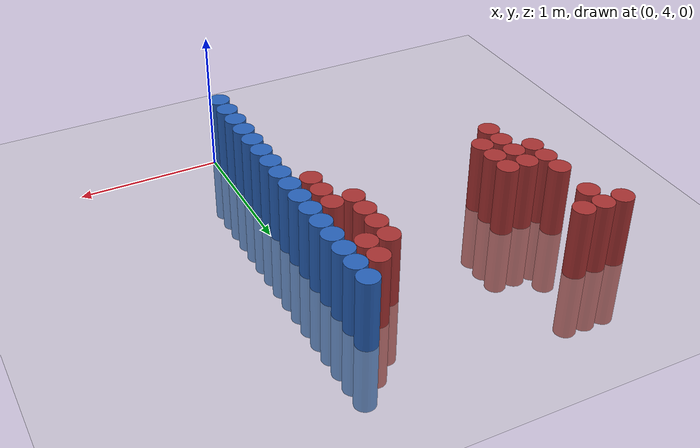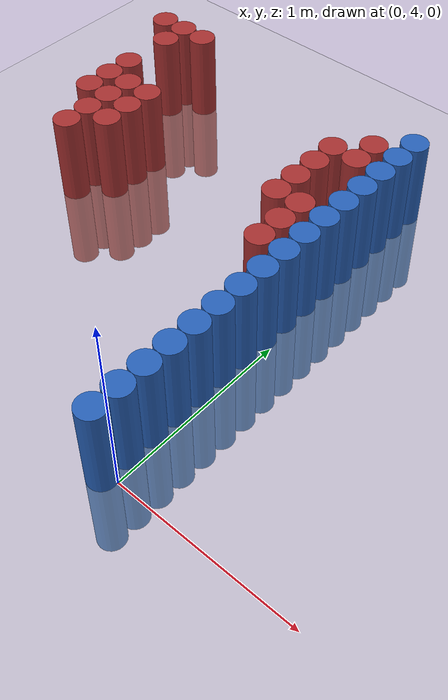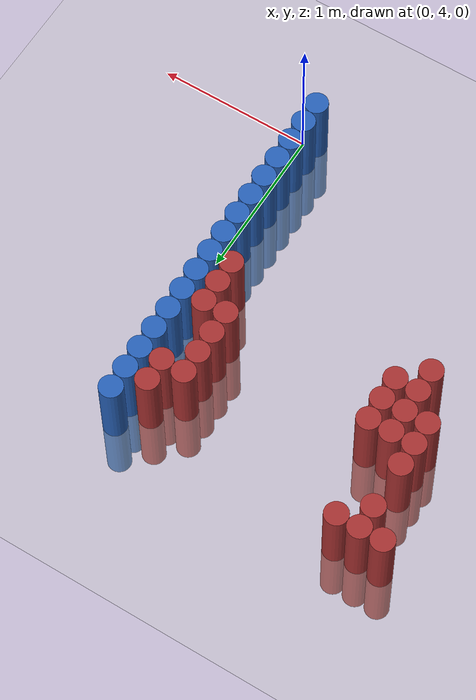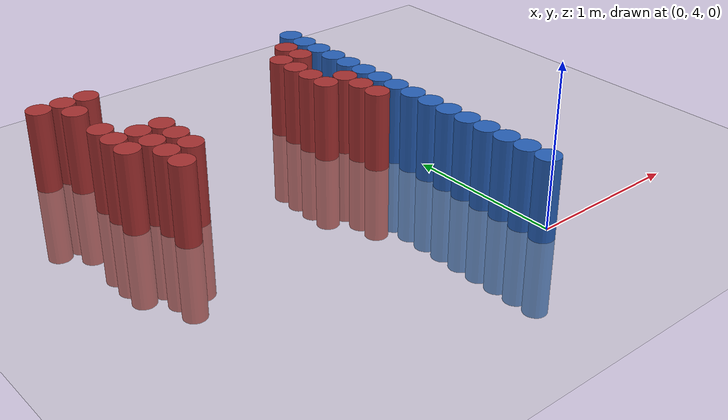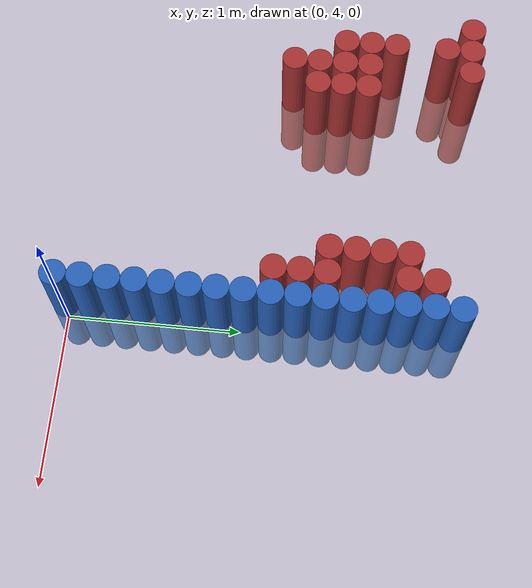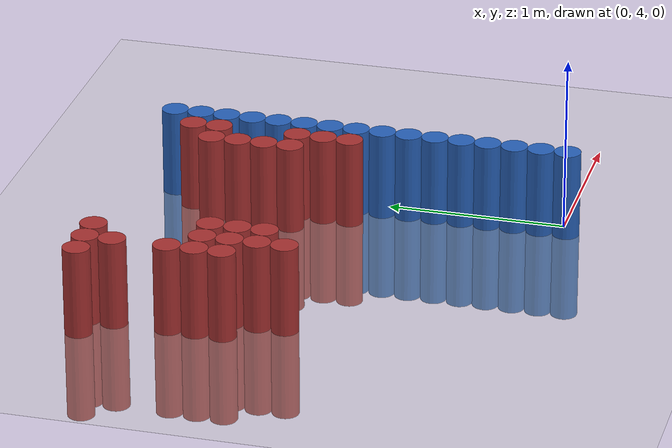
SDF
<sdf version="1.6">
 <world name="default">
  <model name="ground_plane">
   <static>1</static>
   <link name="link">
    <collision name="collision">
     <geometry><plane><normal>0 0 1</normal><size>100 100</size></plane></geometry>
     <surface><friction><ode><mu>100</mu><mu2>50</mu2></ode></friction></surface>
    </collision>
    <visual name="visual">
     <cast_shadows>0</cast_shadows>
     <geometry><plane><normal>0 0 1</normal><size>100 100</size></plane></geometry>
     <material>
      <script><uri>file://media/materials/scripts/gazebo.material</uri><name>Gazebo/Grey</name></script>
     </material>
    </visual>
   </link>
  </model>
  <model name="unit_cylinder_80">
   <static>1</static>
   <pose>-0.075000 3.975000 0.000000 0.000000 0.000000 0.000000</pose>
   <link name="link">
    <inertial>
     <mass>1</mass>
     <inertia><ixx>0.145833</ixx><ixy>0</ixy><ixz>0</ixz><iyy>0.145833</iyy><iyz>0</iyz><izz>0.125</izz></inertia>
    </inertial>
    <collision name="collision">
     <geometry><cylinder><radius>0.075000</radius><length>1</length></cylinder></geometry>
    </collision>
    <visual name="visual">
     <geometry><cylinder><radius>0.075000</radius><length>1</length></cylinder></geometry>
     <material>
      <ambient>0.152000 0.379000 0.720000 1</ambient>
      <diffuse>0.152000 0.379000 0.720000 1</diffuse>
     </material>
     <material>
      <script><name>Gazebo/Grey</name><uri>file://media/materials/scripts/gazebo.material</uri></script>
     </material>
    </visual>
    <sensor name="sensor_contact" type="contact"><contact><collision>collision</collision></contact></sensor>
   </link>
   <plugin filename="gz-sim-touchplugin-system" name="gz::sim::systems::TouchPlugin">
    <target>robot</target>
    <namespace>robot</namespace>
    <time>0.001</time>
    <enabled>true</enabled>
   </plugin>
  </model>
  <model name="unit_cylinder_82">
   <static>1</static>
   <pose>-0.075000 4.125000 0.000000 0.000000 0.000000 0.000000</pose>
   <link name="link">
    <inertial>
     <mass>1</mass>
     <inertia><ixx>0.145833</ixx><ixy>0</ixy><ixz>0</ixz><iyy>0.145833</iyy><iyz>0</iyz><izz>0.125</izz></inertia>
    </inertial>
    <collision name="collision">
     <geometry><cylinder><radius>0.075000</radius><length>1</length></cylinder></geometry>
    </collision>
    <visual name="visual">
     <geometry><cylinder><radius>0.075000</radius><length>1</length></cylinder></geometry>
     <material>
      <ambient>0.152000 0.379000 0.720000 1</ambient>
      <diffuse>0.152000 0.379000 0.720000 1</diffuse>
     </material>
     <material>
      <script><name>Gazebo/Grey</name><uri>file://media/materials/scripts/gazebo.material</uri></script>
     </material>
    </visual>
    <sensor name="sensor_contact" type="contact"><contact><collision>collision</collision></contact></sensor>
   </link>
   <plugin filename="gz-sim-touchplugin-system" name="gz::sim::systems::TouchPlugin">
    <target>robot</target>
    <namespace>robot</namespace>
    <time>0.001</time>
    <enabled>true</enabled>
   </plugin>
  </model>
  <model name="unit_cylinder_84">
   <static>1</static>
   <pose>-0.075000 4.275000 0.000000 0.000000 0.000000 0.000000</pose>
   <link name="link">
    <inertial>
     <mass>1</mass>
     <inertia><ixx>0.145833</ixx><ixy>0</ixy><ixz>0</ixz><iyy>0.145833</iyy><iyz>0</iyz><izz>0.125</izz></inertia>
    </inertial>
    <collision name="collision">
     <geometry><cylinder><radius>0.075000</radius><length>1</length></cylinder></geometry>
    </collision>
    <visual name="visual">
     <geometry><cylinder><radius>0.075000</radius><length>1</length></cylinder></geometry>
     <material>
      <ambient>0.152000 0.379000 0.720000 1</ambient>
      <diffuse>0.152000 0.379000 0.720000 1</diffuse>
     </material>
     <material>
      <script><name>Gazebo/Grey</name><uri>file://media/materials/scripts/gazebo.material</uri></script>
     </material>
    </visual>
    <sensor name="sensor_contact" type="contact"><contact><collision>collision</collision></contact></sensor>
   </link>
   <plugin filename="gz-sim-touchplugin-system" name="gz::sim::systems::TouchPlugin">
    <target>robot</target>
    <namespace>robot</namespace>
    <time>0.001</time>
    <enabled>true</enabled>
   </plugin>
  </model>
  <model name="unit_cylinder_86">
   <static>1</static>
   <pose>-0.075000 4.425000 0.000000 0.000000 0.000000 0.000000</pose>
   <link name="link">
    <inertial>
     <mass>1</mass>
     <inertia><ixx>0.145833</ixx><ixy>0</ixy><ixz>0</ixz><iyy>0.145833</iyy><iyz>0</iyz><izz>0.125</izz></inertia>
    </inertial>
    <collision name="collision">
     <geometry><cylinder><radius>0.075000</radius><length>1</length></cylinder></geometry>
    </collision>
    <visual name="visual">
     <geometry><cylinder><radius>0.075000</radius><length>1</length></cylinder></geometry>
     <material>
      <ambient>0.152000 0.379000 0.720000 1</ambient>
      <diffuse>0.152000 0.379000 0.720000 1</diffuse>
     </material>
     <material>
      <script><name>Gazebo/Grey</name><uri>file://media/materials/scripts/gazebo.material</uri></script>
     </material>
    </visual>
    <sensor name="sensor_contact" type="contact"><contact><collision>collision</collision></contact></sensor>
   </link>
   <plugin filename="gz-sim-touchplugin-system" name="gz::sim::systems::TouchPlugin">
    <target>robot</target>
    <namespace>robot</namespace>
    <time>0.001</time>
    <enabled>true</enabled>
   </plugin>
  </model>
  <model name="unit_cylinder_88">
   <static>1</static>
   <pose>-0.075000 4.575000 0.000000 0.000000 0.000000 0.000000</pose>
   <link name="link">
    <inertial>
     <mass>1</mass>
     <inertia><ixx>0.145833</ixx><ixy>0</ixy><ixz>0</ixz><iyy>0.145833</iyy><iyz>0</iyz><izz>0.125</izz></inertia>
    </inertial>
    <collision name="collision">
     <geometry><cylinder><radius>0.075000</radius><length>1</length></cylinder></geometry>
    </collision>
    <visual name="visual">
     <geometry><cylinder><radius>0.075000</radius><length>1</length></cylinder></geometry>
     <material>
      <ambient>0.152000 0.379000 0.720000 1</ambient>
      <diffuse>0.152000 0.379000 0.720000 1</diffuse>
     </material>
     <material>
      <script><name>Gazebo/Grey</name><uri>file://media/materials/scripts/gazebo.material</uri></script>
     </material>
    </visual>
    <sensor name="sensor_contact" type="contact"><contact><collision>collision</collision></contact></sensor>
   </link>
   <plugin filename="gz-sim-touchplugin-system" name="gz::sim::systems::TouchPlugin">
    <target>robot</target>
    <namespace>robot</namespace>
    <time>0.001</time>
    <enabled>true</enabled>
   </plugin>
  </model>
  <model name="unit_cylinder_90">
   <static>1</static>
   <pose>-0.075000 4.725000 0.000000 0.000000 0.000000 0.000000</pose>
   <link name="link">
    <inertial>
     <mass>1</mass>
     <inertia><ixx>0.145833</ixx><ixy>0</ixy><ixz>0</ixz><iyy>0.145833</iyy><iyz>0</iyz><izz>0.125</izz></inertia>
    </inertial>
    <collision name="collision">
     <geometry><cylinder><radius>0.075000</radius><length>1</length></cylinder></geometry>
    </collision>
    <visual name="visual">
     <geometry><cylinder><radius>0.075000</radius><length>1</length></cylinder></geometry>
     <material>
      <ambient>0.152000 0.379000 0.720000 1</ambient>
      <diffuse>0.152000 0.379000 0.720000 1</diffuse>
     </material>
     <material>
      <script><name>Gazebo/Grey</name><uri>file://media/materials/scripts/gazebo.material</uri></script>
     </material>
    </visual>
    <sensor name="sensor_contact" type="contact"><contact><collision>collision</collision></contact></sensor>
   </link>
   <plugin filename="gz-sim-touchplugin-system" name="gz::sim::systems::TouchPlugin">
    <target>robot</target>
    <namespace>robot</namespace>
    <time>0.001</time>
    <enabled>true</enabled>
   </plugin>
  </model>
  <model name="unit_cylinder_92">
   <static>1</static>
   <pose>-0.075000 4.875000 0.000000 0.000000 0.000000 0.000000</pose>
   <link name="link">
    <inertial>
     <mass>1</mass>
     <inertia><ixx>0.145833</ixx><ixy>0</ixy><ixz>0</ixz><iyy>0.145833</iyy><iyz>0</iyz><izz>0.125</izz></inertia>
    </inertial>
    <collision name="collision">
     <geometry><cylinder><radius>0.075000</radius><length>1</length></cylinder></geometry>
    </collision>
    <visual name="visual">
     <geometry><cylinder><radius>0.075000</radius><length>1</length></cylinder></geometry>
     <material>
      <ambient>0.152000 0.379000 0.720000 1</ambient>
      <diffuse>0.152000 0.379000 0.720000 1</diffuse>
     </material>
     <material>
      <script><name>Gazebo/Grey</name><uri>file://media/materials/scripts/gazebo.material</uri></script>
     </material>
    </visual>
    <sensor name="sensor_contact" type="contact"><contact><collision>collision</collision></contact></sensor>
   </link>
   <plugin filename="gz-sim-touchplugin-system" name="gz::sim::systems::TouchPlugin">
    <target>robot</target>
    <namespace>robot</namespace>
    <time>0.001</time>
    <enabled>true</enabled>
   </plugin>
  </model>
  <model name="unit_cylinder_94">
   <static>1</static>
   <pose>-0.075000 5.025000 0.000000 0.000000 0.000000 0.000000</pose>
   <link name="link">
    <inertial>
     <mass>1</mass>
     <inertia><ixx>0.145833</ixx><ixy>0</ixy><ixz>0</ixz><iyy>0.145833</iyy><iyz>0</iyz><izz>0.125</izz></inertia>
    </inertial>
    <collision name="collision">
     <geometry><cylinder><radius>0.075000</radius><length>1</length></cylinder></geometry>
    </collision>
    <visual name="visual">
     <geometry><cylinder><radius>0.075000</radius><length>1</length></cylinder></geometry>
     <material>
      <ambient>0.152000 0.379000 0.720000 1</ambient>
      <diffuse>0.152000 0.379000 0.720000 1</diffuse>
     </material>
     <material>
      <script><name>Gazebo/Grey</name><uri>file://media/materials/scripts/gazebo.material</uri></script>
     </material>
    </visual>
    <sensor name="sensor_contact" type="contact"><contact><collision>collision</collision></contact></sensor>
   </link>
   <plugin filename="gz-sim-touchplugin-system" name="gz::sim::systems::TouchPlugin">
    <target>robot</target>
    <namespace>robot</namespace>
    <time>0.001</time>
    <enabled>true</enabled>
   </plugin>
  </model>
  <model name="unit_cylinder_227">
   <static>1</static>
   <pose>-1.875000 6.225000 0.000000 0.000000 0.000000 0.000000</pose>
   <link name="link">
    <inertial>
     <mass>1</mass>
     <inertia><ixx>0.145833</ixx><ixy>0</ixy><ixz>0</ixz><iyy>0.145833</iyy><iyz>0</iyz><izz>0.125</izz></inertia>
    </inertial>
    <collision name="collision">
     <geometry><cylinder><radius>0.075000</radius><length>1</length></cylinder></geometry>
    </collision>
    <visual name="visual">
     <geometry><cylinder><radius>0.075000</radius><length>1</length></cylinder></geometry>
     <material>
      <ambient>0.648000 0.192000 0.192000 1</ambient>
      <diffuse>0.648000 0.192000 0.192000 1</diffuse>
     </material>
     <material>
      <script><name>Gazebo/Grey</name><uri>file://media/materials/scripts/gazebo.material</uri></script>
     </material>
    </visual>
    <sensor name="sensor_contact" type="contact"><contact><collision>collision</collision></contact></sensor>
   </link>
   <plugin filename="gz-sim-touchplugin-system" name="gz::sim::systems::TouchPlugin">
    <target>robot</target>
    <namespace>robot</namespace>
    <time>0.001</time>
    <enabled>true</enabled>
   </plugin>
  </model>
  <model name="unit_cylinder_233">
   <static>1</static>
   <pose>-1.725000 5.475000 0.000000 0.000000 0.000000 0.000000</pose>
   <link name="link">
    <inertial>
     <mass>1</mass>
     <inertia><ixx>0.145833</ixx><ixy>0</ixy><ixz>0</ixz><iyy>0.145833</iyy><iyz>0</iyz><izz>0.125</izz></inertia>
    </inertial>
    <collision name="collision">
     <geometry><cylinder><radius>0.075000</radius><length>1</length></cylinder></geometry>
    </collision>
    <visual name="visual">
     <geometry><cylinder><radius>0.075000</radius><length>1</length></cylinder></geometry>
     <material>
      <ambient>0.648000 0.192000 0.192000 1</ambient>
      <diffuse>0.648000 0.192000 0.192000 1</diffuse>
     </material>
     <material>
      <script><name>Gazebo/Grey</name><uri>file://media/materials/scripts/gazebo.material</uri></script>
     </material>
    </visual>
    <sensor name="sensor_contact" type="contact"><contact><collision>collision</collision></contact></sensor>
   </link>
   <plugin filename="gz-sim-touchplugin-system" name="gz::sim::systems::TouchPlugin">
    <target>robot</target>
    <namespace>robot</namespace>
    <time>0.001</time>
    <enabled>true</enabled>
   </plugin>
  </model>
  <model name="unit_cylinder_234">
   <static>1</static>
   <pose>-1.725000 5.625000 0.000000 0.000000 0.000000 0.000000</pose>
   <link name="link">
    <inertial>
     <mass>1</mass>
     <inertia><ixx>0.145833</ixx><ixy>0</ixy><ixz>0</ixz><iyy>0.145833</iyy><iyz>0</iyz><izz>0.125</izz></inertia>
    </inertial>
    <collision name="collision">
     <geometry><cylinder><radius>0.075000</radius><length>1</length></cylinder></geometry>
    </collision>
    <visual name="visual">
     <geometry><cylinder><radius>0.075000</radius><length>1</length></cylinder></geometry>
     <material>
      <ambient>0.648000 0.192000 0.192000 1</ambient>
      <diffuse>0.648000 0.192000 0.192000 1</diffuse>
     </material>
     <material>
      <script><name>Gazebo/Grey</name><uri>file://media/materials/scripts/gazebo.material</uri></script>
     </material>
    </visual>
    <sensor name="sensor_contact" type="contact"><contact><collision>collision</collision></contact></sensor>
   </link>
   <plugin filename="gz-sim-touchplugin-system" name="gz::sim::systems::TouchPlugin">
    <target>robot</target>
    <namespace>robot</namespace>
    <time>0.001</time>
    <enabled>true</enabled>
   </plugin>
  </model>
  <model name="unit_cylinder_235">
   <static>1</static>
   <pose>-1.725000 5.775000 0.000000 0.000000 0.000000 0.000000</pose>
   <link name="link">
    <inertial>
     <mass>1</mass>
     <inertia><ixx>0.145833</ixx><ixy>0</ixy><ixz>0</ixz><iyy>0.145833</iyy><iyz>0</iyz><izz>0.125</izz></inertia>
    </inertial>
    <collision name="collision">
     <geometry><cylinder><radius>0.075000</radius><length>1</length></cylinder></geometry>
    </collision>
    <visual name="visual">
     <geometry><cylinder><radius>0.075000</radius><length>1</length></cylinder></geometry>
     <material>
      <ambient>0.648000 0.192000 0.192000 1</ambient>
      <diffuse>0.648000 0.192000 0.192000 1</diffuse>
     </material>
     <material>
      <script><name>Gazebo/Grey</name><uri>file://media/materials/scripts/gazebo.material</uri></script>
     </material>
    </visual>
    <sensor name="sensor_contact" type="contact"><contact><collision>collision</collision></contact></sensor>
   </link>
   <plugin filename="gz-sim-touchplugin-system" name="gz::sim::systems::TouchPlugin">
    <target>robot</target>
    <namespace>robot</namespace>
    <time>0.001</time>
    <enabled>true</enabled>
   </plugin>
  </model>
  <model name="unit_cylinder_236">
   <static>1</static>
   <pose>-1.725000 6.075000 0.000000 0.000000 0.000000 0.000000</pose>
   <link name="link">
    <inertial>
     <mass>1</mass>
     <inertia><ixx>0.145833</ixx><ixy>0</ixy><ixz>0</ixz><iyy>0.145833</iyy><iyz>0</iyz><izz>0.125</izz></inertia>
    </inertial>
    <collision name="collision">
     <geometry><cylinder><radius>0.075000</radius><length>1</length></cylinder></geometry>
    </collision>
    <visual name="visual">
     <geometry><cylinder><radius>0.075000</radius><length>1</length></cylinder></geometry>
     <material>
      <ambient>0.648000 0.192000 0.192000 1</ambient>
      <diffuse>0.648000 0.192000 0.192000 1</diffuse>
     </material>
     <material>
      <script><name>Gazebo/Grey</name><uri>file://media/materials/scripts/gazebo.material</uri></script>
     </material>
    </visual>
    <sensor name="sensor_contact" type="contact"><contact><collision>collision</collision></contact></sensor>
   </link>
   <plugin filename="gz-sim-touchplugin-system" name="gz::sim::systems::TouchPlugin">
    <target>robot</target>
    <namespace>robot</namespace>
    <time>0.001</time>
    <enabled>true</enabled>
   </plugin>
  </model>
  <model name="unit_cylinder_237">
   <static>1</static>
   <pose>-1.725000 6.225000 0.000000 0.000000 0.000000 0.000000</pose>
   <link name="link">
    <inertial>
     <mass>1</mass>
     <inertia><ixx>0.145833</ixx><ixy>0</ixy><ixz>0</ixz><iyy>0.145833</iyy><iyz>0</iyz><izz>0.125</izz></inertia>
    </inertial>
    <collision name="collision">
     <geometry><cylinder><radius>0.075000</radius><length>1</length></cylinder></geometry>
    </collision>
    <visual name="visual">
     <geometry><cylinder><radius>0.075000</radius><length>1</length></cylinder></geometry>
     <material>
      <ambient>0.648000 0.192000 0.192000 1</ambient>
      <diffuse>0.648000 0.192000 0.192000 1</diffuse>
     </material>
     <material>
      <script><name>Gazebo/Grey</name><uri>file://media/materials/scripts/gazebo.material</uri></script>
     </material>
    </visual>
    <sensor name="sensor_contact" type="contact"><contact><collision>collision</collision></contact></sensor>
   </link>
   <plugin filename="gz-sim-touchplugin-system" name="gz::sim::systems::TouchPlugin">
    <target>robot</target>
    <namespace>robot</namespace>
    <time>0.001</time>
    <enabled>true</enabled>
   </plugin>
  </model>
  <model name="unit_cylinder_242">
   <static>1</static>
   <pose>-1.575000 5.175000 0.000000 0.000000 0.000000 0.000000</pose>
   <link name="link">
    <inertial>
     <mass>1</mass>
     <inertia><ixx>0.145833</ixx><ixy>0</ixy><ixz>0</ixz><iyy>0.145833</iyy><iyz>0</iyz><izz>0.125</izz></inertia>
    </inertial>
    <collision name="collision">
     <geometry><cylinder><radius>0.075000</radius><length>1</length></cylinder></geometry>
    </collision>
    <visual name="visual">
     <geometry><cylinder><radius>0.075000</radius><length>1</length></cylinder></geometry>
     <material>
      <ambient>0.648000 0.192000 0.192000 1</ambient>
      <diffuse>0.648000 0.192000 0.192000 1</diffuse>
     </material>
     <material>
      <script><name>Gazebo/Grey</name><uri>file://media/materials/scripts/gazebo.material</uri></script>
     </material>
    </visual>
    <sensor name="sensor_contact" type="contact"><contact><collision>collision</collision></contact></sensor>
   </link>
   <plugin filename="gz-sim-touchplugin-system" name="gz::sim::systems::TouchPlugin">
    <target>robot</target>
    <namespace>robot</namespace>
    <time>0.001</time>
    <enabled>true</enabled>
   </plugin>
  </model>
  <model name="unit_cylinder_243">
   <static>1</static>
   <pose>-1.575000 5.325000 0.000000 0.000000 0.000000 0.000000</pose>
   <link name="link">
    <inertial>
     <mass>1</mass>
     <inertia><ixx>0.145833</ixx><ixy>0</ixy><ixz>0</ixz><iyy>0.145833</iyy><iyz>0</iyz><izz>0.125</izz></inertia>
    </inertial>
    <collision name="collision">
     <geometry><cylinder><radius>0.075000</radius><length>1</length></cylinder></geometry>
    </collision>
    <visual name="visual">
     <geometry><cylinder><radius>0.075000</radius><length>1</length></cylinder></geometry>
     <material>
      <ambient>0.648000 0.192000 0.192000 1</ambient>
      <diffuse>0.648000 0.192000 0.192000 1</diffuse>
     </material>
     <material>
      <script><name>Gazebo/Grey</name><uri>file://media/materials/scripts/gazebo.material</uri></script>
     </material>
    </visual>
    <sensor name="sensor_contact" type="contact"><contact><collision>collision</collision></contact></sensor>
   </link>
   <plugin filename="gz-sim-touchplugin-system" name="gz::sim::systems::TouchPlugin">
    <target>robot</target>
    <namespace>robot</namespace>
    <time>0.001</time>
    <enabled>true</enabled>
   </plugin>
  </model>
  <model name="unit_cylinder_244">
   <static>1</static>
   <pose>-1.575000 5.475000 0.000000 0.000000 0.000000 0.000000</pose>
   <link name="link">
    <inertial>
     <mass>1</mass>
     <inertia><ixx>0.145833</ixx><ixy>0</ixy><ixz>0</ixz><iyy>0.145833</iyy><iyz>0</iyz><izz>0.125</izz></inertia>
    </inertial>
    <collision name="collision">
     <geometry><cylinder><radius>0.075000</radius><length>1</length></cylinder></geometry>
    </collision>
    <visual name="visual">
     <geometry><cylinder><radius>0.075000</radius><length>1</length></cylinder></geometry>
     <material>
      <ambient>0.648000 0.192000 0.192000 1</ambient>
      <diffuse>0.648000 0.192000 0.192000 1</diffuse>
     </material>
     <material>
      <script><name>Gazebo/Grey</name><uri>file://media/materials/scripts/gazebo.material</uri></script>
     </material>
    </visual>
    <sensor name="sensor_contact" type="contact"><contact><collision>collision</collision></contact></sensor>
   </link>
   <plugin filename="gz-sim-touchplugin-system" name="gz::sim::systems::TouchPlugin">
    <target>robot</target>
    <namespace>robot</namespace>
    <time>0.001</time>
    <enabled>true</enabled>
   </plugin>
  </model>
  <model name="unit_cylinder_245">
   <static>1</static>
   <pose>-1.575000 5.625000 0.000000 0.000000 0.000000 0.000000</pose>
   <link name="link">
    <inertial>
     <mass>1</mass>
     <inertia><ixx>0.145833</ixx><ixy>0</ixy><ixz>0</ixz><iyy>0.145833</iyy><iyz>0</iyz><izz>0.125</izz></inertia>
    </inertial>
    <collision name="collision">
     <geometry><cylinder><radius>0.075000</radius><length>1</length></cylinder></geometry>
    </collision>
    <visual name="visual">
     <geometry><cylinder><radius>0.075000</radius><length>1</length></cylinder></geometry>
     <material>
      <ambient>0.648000 0.192000 0.192000 1</ambient>
      <diffuse>0.648000 0.192000 0.192000 1</diffuse>
     </material>
     <material>
      <script><name>Gazebo/Grey</name><uri>file://media/materials/scripts/gazebo.material</uri></script>
     </material>
    </visual>
    <sensor name="sensor_contact" type="contact"><contact><collision>collision</collision></contact></sensor>
   </link>
   <plugin filename="gz-sim-touchplugin-system" name="gz::sim::systems::TouchPlugin">
    <target>robot</target>
    <namespace>robot</namespace>
    <time>0.001</time>
    <enabled>true</enabled>
   </plugin>
  </model>
  <model name="unit_cylinder_246">
   <static>1</static>
   <pose>-1.575000 6.225000 0.000000 0.000000 0.000000 0.000000</pose>
   <link name="link">
    <inertial>
     <mass>1</mass>
     <inertia><ixx>0.145833</ixx><ixy>0</ixy><ixz>0</ixz><iyy>0.145833</iyy><iyz>0</iyz><izz>0.125</izz></inertia>
    </inertial>
    <collision name="collision">
     <geometry><cylinder><radius>0.075000</radius><length>1</length></cylinder></geometry>
    </collision>
    <visual name="visual">
     <geometry><cylinder><radius>0.075000</radius><length>1</length></cylinder></geometry>
     <material>
      <ambient>0.648000 0.192000 0.192000 1</ambient>
      <diffuse>0.648000 0.192000 0.192000 1</diffuse>
     </material>
     <material>
      <script><name>Gazebo/Grey</name><uri>file://media/materials/scripts/gazebo.material</uri></script>
     </material>
    </visual>
    <sensor name="sensor_contact" type="contact"><contact><collision>collision</collision></contact></sensor>
   </link>
   <plugin filename="gz-sim-touchplugin-system" name="gz::sim::systems::TouchPlugin">
    <target>robot</target>
    <namespace>robot</namespace>
    <time>0.001</time>
    <enabled>true</enabled>
   </plugin>
  </model>
  <model name="unit_cylinder_256">
   <static>1</static>
   <pose>-1.425000 5.325000 0.000000 0.000000 0.000000 0.000000</pose>
   <link name="link">
    <inertial>
     <mass>1</mass>
     <inertia><ixx>0.145833</ixx><ixy>0</ixy><ixz>0</ixz><iyy>0.145833</iyy><iyz>0</iyz><izz>0.125</izz></inertia>
    </inertial>
    <collision name="collision">
     <geometry><cylinder><radius>0.075000</radius><length>1</length></cylinder></geometry>
    </collision>
    <visual name="visual">
     <geometry><cylinder><radius>0.075000</radius><length>1</length></cylinder></geometry>
     <material>
      <ambient>0.648000 0.192000 0.192000 1</ambient>
      <diffuse>0.648000 0.192000 0.192000 1</diffuse>
     </material>
     <material>
      <script><name>Gazebo/Grey</name><uri>file://media/materials/scripts/gazebo.material</uri></script>
     </material>
    </visual>
    <sensor name="sensor_contact" type="contact"><contact><collision>collision</collision></contact></sensor>
   </link>
   <plugin filename="gz-sim-touchplugin-system" name="gz::sim::systems::TouchPlugin">
    <target>robot</target>
    <namespace>robot</namespace>
    <time>0.001</time>
    <enabled>true</enabled>
   </plugin>
  </model>
  <model name="unit_cylinder_257">
   <static>1</static>
   <pose>-1.425000 5.475000 0.000000 0.000000 0.000000 0.000000</pose>
   <link name="link">
    <inertial>
     <mass>1</mass>
     <inertia><ixx>0.145833</ixx><ixy>0</ixy><ixz>0</ixz><iyy>0.145833</iyy><iyz>0</iyz><izz>0.125</izz></inertia>
    </inertial>
    <collision name="collision">
     <geometry><cylinder><radius>0.075000</radius><length>1</length></cylinder></geometry>
    </collision>
    <visual name="visual">
     <geometry><cylinder><radius>0.075000</radius><length>1</length></cylinder></geometry>
     <material>
      <ambient>0.648000 0.192000 0.192000 1</ambient>
      <diffuse>0.648000 0.192000 0.192000 1</diffuse>
     </material>
     <material>
      <script><name>Gazebo/Grey</name><uri>file://media/materials/scripts/gazebo.material</uri></script>
     </material>
    </visual>
    <sensor name="sensor_contact" type="contact"><contact><collision>collision</collision></contact></sensor>
   </link>
   <plugin filename="gz-sim-touchplugin-system" name="gz::sim::systems::TouchPlugin">
    <target>robot</target>
    <namespace>robot</namespace>
    <time>0.001</time>
    <enabled>true</enabled>
   </plugin>
  </model>
  <model name="unit_cylinder_258">
   <static>1</static>
   <pose>-1.425000 5.625000 0.000000 0.000000 0.000000 0.000000</pose>
   <link name="link">
    <inertial>
     <mass>1</mass>
     <inertia><ixx>0.145833</ixx><ixy>0</ixy><ixz>0</ixz><iyy>0.145833</iyy><iyz>0</iyz><izz>0.125</izz></inertia>
    </inertial>
    <collision name="collision">
     <geometry><cylinder><radius>0.075000</radius><length>1</length></cylinder></geometry>
    </collision>
    <visual name="visual">
     <geometry><cylinder><radius>0.075000</radius><length>1</length></cylinder></geometry>
     <material>
      <ambient>0.648000 0.192000 0.192000 1</ambient>
      <diffuse>0.648000 0.192000 0.192000 1</diffuse>
     </material>
     <material>
      <script><name>Gazebo/Grey</name><uri>file://media/materials/scripts/gazebo.material</uri></script>
     </material>
    </visual>
    <sensor name="sensor_contact" type="contact"><contact><collision>collision</collision></contact></sensor>
   </link>
   <plugin filename="gz-sim-touchplugin-system" name="gz::sim::systems::TouchPlugin">
    <target>robot</target>
    <namespace>robot</namespace>
    <time>0.001</time>
    <enabled>true</enabled>
   </plugin>
  </model>
  <model name="unit_cylinder_291">
   <static>1</static>
   <pose>-0.375000 5.475000 0.000000 0.000000 0.000000 0.000000</pose>
   <link name="link">
    <inertial>
     <mass>1</mass>
     <inertia><ixx>0.145833</ixx><ixy>0</ixy><ixz>0</ixz><iyy>0.145833</iyy><iyz>0</iyz><izz>0.125</izz></inertia>
    </inertial>
    <collision name="collision">
     <geometry><cylinder><radius>0.075000</radius><length>1</length></cylinder></geometry>
    </collision>
    <visual name="visual">
     <geometry><cylinder><radius>0.075000</radius><length>1</length></cylinder></geometry>
     <material>
      <ambient>0.648000 0.192000 0.192000 1</ambient>
      <diffuse>0.648000 0.192000 0.192000 1</diffuse>
     </material>
     <material>
      <script><name>Gazebo/Grey</name><uri>file://media/materials/scripts/gazebo.material</uri></script>
     </material>
    </visual>
    <sensor name="sensor_contact" type="contact"><contact><collision>collision</collision></contact></sensor>
   </link>
   <plugin filename="gz-sim-touchplugin-system" name="gz::sim::systems::TouchPlugin">
    <target>robot</target>
    <namespace>robot</namespace>
    <time>0.001</time>
    <enabled>true</enabled>
   </plugin>
  </model>
  <model name="unit_cylinder_292">
   <static>1</static>
   <pose>-0.375000 5.625000 0.000000 0.000000 0.000000 0.000000</pose>
   <link name="link">
    <inertial>
     <mass>1</mass>
     <inertia><ixx>0.145833</ixx><ixy>0</ixy><ixz>0</ixz><iyy>0.145833</iyy><iyz>0</iyz><izz>0.125</izz></inertia>
    </inertial>
    <collision name="collision">
     <geometry><cylinder><radius>0.075000</radius><length>1</length></cylinder></geometry>
    </collision>
    <visual name="visual">
     <geometry><cylinder><radius>0.075000</radius><length>1</length></cylinder></geometry>
     <material>
      <ambient>0.648000 0.192000 0.192000 1</ambient>
      <diffuse>0.648000 0.192000 0.192000 1</diffuse>
     </material>
     <material>
      <script><name>Gazebo/Grey</name><uri>file://media/materials/scripts/gazebo.material</uri></script>
     </material>
    </visual>
    <sensor name="sensor_contact" type="contact"><contact><collision>collision</collision></contact></sensor>
   </link>
   <plugin filename="gz-sim-touchplugin-system" name="gz::sim::systems::TouchPlugin">
    <target>robot</target>
    <namespace>robot</namespace>
    <time>0.001</time>
    <enabled>true</enabled>
   </plugin>
  </model>
  <model name="unit_cylinder_293">
   <static>1</static>
   <pose>-0.375000 5.775000 0.000000 0.000000 0.000000 0.000000</pose>
   <link name="link">
    <inertial>
     <mass>1</mass>
     <inertia><ixx>0.145833</ixx><ixy>0</ixy><ixz>0</ixz><iyy>0.145833</iyy><iyz>0</iyz><izz>0.125</izz></inertia>
    </inertial>
    <collision name="collision">
     <geometry><cylinder><radius>0.075000</radius><length>1</length></cylinder></geometry>
    </collision>
    <visual name="visual">
     <geometry><cylinder><radius>0.075000</radius><length>1</length></cylinder></geometry>
     <material>
      <ambient>0.648000 0.192000 0.192000 1</ambient>
      <diffuse>0.648000 0.192000 0.192000 1</diffuse>
     </material>
     <material>
      <script><name>Gazebo/Grey</name><uri>file://media/materials/scripts/gazebo.material</uri></script>
     </material>
    </visual>
    <sensor name="sensor_contact" type="contact"><contact><collision>collision</collision></contact></sensor>
   </link>
   <plugin filename="gz-sim-touchplugin-system" name="gz::sim::systems::TouchPlugin">
    <target>robot</target>
    <namespace>robot</namespace>
    <time>0.001</time>
    <enabled>true</enabled>
   </plugin>
  </model>
  <model name="unit_cylinder_294">
   <static>1</static>
   <pose>-0.375000 5.925000 0.000000 0.000000 0.000000 0.000000</pose>
   <link name="link">
    <inertial>
     <mass>1</mass>
     <inertia><ixx>0.145833</ixx><ixy>0</ixy><ixz>0</ixz><iyy>0.145833</iyy><iyz>0</iyz><izz>0.125</izz></inertia>
    </inertial>
    <collision name="collision">
     <geometry><cylinder><radius>0.075000</radius><length>1</length></cylinder></geometry>
    </collision>
    <visual name="visual">
     <geometry><cylinder><radius>0.075000</radius><length>1</length></cylinder></geometry>
     <material>
      <ambient>0.648000 0.192000 0.192000 1</ambient>
      <diffuse>0.648000 0.192000 0.192000 1</diffuse>
     </material>
     <material>
      <script><name>Gazebo/Grey</name><uri>file://media/materials/scripts/gazebo.material</uri></script>
     </material>
    </visual>
    <sensor name="sensor_contact" type="contact"><contact><collision>collision</collision></contact></sensor>
   </link>
   <plugin filename="gz-sim-touchplugin-system" name="gz::sim::systems::TouchPlugin">
    <target>robot</target>
    <namespace>robot</namespace>
    <time>0.001</time>
    <enabled>true</enabled>
   </plugin>
  </model>
  <model name="unit_cylinder_302">
   <static>1</static>
   <pose>-0.225000 5.175000 0.000000 0.000000 0.000000 0.000000</pose>
   <link name="link">
    <inertial>
     <mass>1</mass>
     <inertia><ixx>0.145833</ixx><ixy>0</ixy><ixz>0</ixz><iyy>0.145833</iyy><iyz>0</iyz><izz>0.125</izz></inertia>
    </inertial>
    <collision name="collision">
     <geometry><cylinder><radius>0.075000</radius><length>1</length></cylinder></geometry>
    </collision>
    <visual name="visual">
     <geometry><cylinder><radius>0.075000</radius><length>1</length></cylinder></geometry>
     <material>
      <ambient>0.648000 0.192000 0.192000 1</ambient>
      <diffuse>0.648000 0.192000 0.192000 1</diffuse>
     </material>
     <material>
      <script><name>Gazebo/Grey</name><uri>file://media/materials/scripts/gazebo.material</uri></script>
     </material>
    </visual>
    <sensor name="sensor_contact" type="contact"><contact><collision>collision</collision></contact></sensor>
   </link>
   <plugin filename="gz-sim-touchplugin-system" name="gz::sim::systems::TouchPlugin">
    <target>robot</target>
    <namespace>robot</namespace>
    <time>0.001</time>
    <enabled>true</enabled>
   </plugin>
  </model>
  <model name="unit_cylinder_303">
   <static>1</static>
   <pose>-0.225000 5.325000 0.000000 0.000000 0.000000 0.000000</pose>
   <link name="link">
    <inertial>
     <mass>1</mass>
     <inertia><ixx>0.145833</ixx><ixy>0</ixy><ixz>0</ixz><iyy>0.145833</iyy><iyz>0</iyz><izz>0.125</izz></inertia>
    </inertial>
    <collision name="collision">
     <geometry><cylinder><radius>0.075000</radius><length>1</length></cylinder></geometry>
    </collision>
    <visual name="visual">
     <geometry><cylinder><radius>0.075000</radius><length>1</length></cylinder></geometry>
     <material>
      <ambient>0.648000 0.192000 0.192000 1</ambient>
      <diffuse>0.648000 0.192000 0.192000 1</diffuse>
     </material>
     <material>
      <script><name>Gazebo/Grey</name><uri>file://media/materials/scripts/gazebo.material</uri></script>
     </material>
    </visual>
    <sensor name="sensor_contact" type="contact"><contact><collision>collision</collision></contact></sensor>
   </link>
   <plugin filename="gz-sim-touchplugin-system" name="gz::sim::systems::TouchPlugin">
    <target>robot</target>
    <namespace>robot</namespace>
    <time>0.001</time>
    <enabled>true</enabled>
   </plugin>
  </model>
  <model name="unit_cylinder_304">
   <static>1</static>
   <pose>-0.225000 5.475000 0.000000 0.000000 0.000000 0.000000</pose>
   <link name="link">
    <inertial>
     <mass>1</mass>
     <inertia><ixx>0.145833</ixx><ixy>0</ixy><ixz>0</ixz><iyy>0.145833</iyy><iyz>0</iyz><izz>0.125</izz></inertia>
    </inertial>
    <collision name="collision">
     <geometry><cylinder><radius>0.075000</radius><length>1</length></cylinder></geometry>
    </collision>
    <visual name="visual">
     <geometry><cylinder><radius>0.075000</radius><length>1</length></cylinder></geometry>
     <material>
      <ambient>0.648000 0.192000 0.192000 1</ambient>
      <diffuse>0.648000 0.192000 0.192000 1</diffuse>
     </material>
     <material>
      <script><name>Gazebo/Grey</name><uri>file://media/materials/scripts/gazebo.material</uri></script>
     </material>
    </visual>
    <sensor name="sensor_contact" type="contact"><contact><collision>collision</collision></contact></sensor>
   </link>
   <plugin filename="gz-sim-touchplugin-system" name="gz::sim::systems::TouchPlugin">
    <target>robot</target>
    <namespace>robot</namespace>
    <time>0.001</time>
    <enabled>true</enabled>
   </plugin>
  </model>
  <model name="unit_cylinder_305">
   <static>1</static>
   <pose>-0.225000 5.925000 0.000000 0.000000 0.000000 0.000000</pose>
   <link name="link">
    <inertial>
     <mass>1</mass>
     <inertia><ixx>0.145833</ixx><ixy>0</ixy><ixz>0</ixz><iyy>0.145833</iyy><iyz>0</iyz><izz>0.125</izz></inertia>
    </inertial>
    <collision name="collision">
     <geometry><cylinder><radius>0.075000</radius><length>1</length></cylinder></geometry>
    </collision>
    <visual name="visual">
     <geometry><cylinder><radius>0.075000</radius><length>1</length></cylinder></geometry>
     <material>
      <ambient>0.648000 0.192000 0.192000 1</ambient>
      <diffuse>0.648000 0.192000 0.192000 1</diffuse>
     </material>
     <material>
      <script><name>Gazebo/Grey</name><uri>file://media/materials/scripts/gazebo.material</uri></script>
     </material>
    </visual>
    <sensor name="sensor_contact" type="contact"><contact><collision>collision</collision></contact></sensor>
   </link>
   <plugin filename="gz-sim-touchplugin-system" name="gz::sim::systems::TouchPlugin">
    <target>robot</target>
    <namespace>robot</namespace>
    <time>0.001</time>
    <enabled>true</enabled>
   </plugin>
  </model>
  <model name="unit_cylinder_306">
   <static>1</static>
   <pose>-0.225000 6.075000 0.000000 0.000000 0.000000 0.000000</pose>
   <link name="link">
    <inertial>
     <mass>1</mass>
     <inertia><ixx>0.145833</ixx><ixy>0</ixy><ixz>0</ixz><iyy>0.145833</iyy><iyz>0</iyz><izz>0.125</izz></inertia>
    </inertial>
    <collision name="collision">
     <geometry><cylinder><radius>0.075000</radius><length>1</length></cylinder></geometry>
    </collision>
    <visual name="visual">
     <geometry><cylinder><radius>0.075000</radius><length>1</length></cylinder></geometry>
     <material>
      <ambient>0.648000 0.192000 0.192000 1</ambient>
      <diffuse>0.648000 0.192000 0.192000 1</diffuse>
     </material>
     <material>
      <script><name>Gazebo/Grey</name><uri>file://media/materials/scripts/gazebo.material</uri></script>
     </material>
    </visual>
    <sensor name="sensor_contact" type="contact"><contact><collision>collision</collision></contact></sensor>
   </link>
   <plugin filename="gz-sim-touchplugin-system" name="gz::sim::systems::TouchPlugin">
    <target>robot</target>
    <namespace>robot</namespace>
    <time>0.001</time>
    <enabled>true</enabled>
   </plugin>
  </model>
  <model name="unit_cylinder_325">
   <static>1</static>
   <pose>-0.075000 5.175000 0.000000 0.000000 0.000000 0.000000</pose>
   <link name="link">
    <inertial>
     <mass>1</mass>
     <inertia><ixx>0.145833</ixx><ixy>0</ixy><ixz>0</ixz><iyy>0.145833</iyy><iyz>0</iyz><izz>0.125</izz></inertia>
    </inertial>
    <collision name="collision">
     <geometry><cylinder><radius>0.075000</radius><length>1</length></cylinder></geometry>
    </collision>
    <visual name="visual">
     <geometry><cylinder><radius>0.075000</radius><length>1</length></cylinder></geometry>
     <material>
      <ambient>0.152000 0.379000 0.720000 1</ambient>
      <diffuse>0.152000 0.379000 0.720000 1</diffuse>
     </material>
     <material>
      <script><name>Gazebo/Grey</name><uri>file://media/materials/scripts/gazebo.material</uri></script>
     </material>
    </visual>
    <sensor name="sensor_contact" type="contact"><contact><collision>collision</collision></contact></sensor>
   </link>
   <plugin filename="gz-sim-touchplugin-system" name="gz::sim::systems::TouchPlugin">
    <target>robot</target>
    <namespace>robot</namespace>
    <time>0.001</time>
    <enabled>true</enabled>
   </plugin>
  </model>
  <model name="unit_cylinder_326">
   <static>1</static>
   <pose>-0.075000 5.325000 0.000000 0.000000 0.000000 0.000000</pose>
   <link name="link">
    <inertial>
     <mass>1</mass>
     <inertia><ixx>0.145833</ixx><ixy>0</ixy><ixz>0</ixz><iyy>0.145833</iyy><iyz>0</iyz><izz>0.125</izz></inertia>
    </inertial>
    <collision name="collision">
     <geometry><cylinder><radius>0.075000</radius><length>1</length></cylinder></geometry>
    </collision>
    <visual name="visual">
     <geometry><cylinder><radius>0.075000</radius><length>1</length></cylinder></geometry>
     <material>
      <ambient>0.152000 0.379000 0.720000 1</ambient>
      <diffuse>0.152000 0.379000 0.720000 1</diffuse>
     </material>
     <material>
      <script><name>Gazebo/Grey</name><uri>file://media/materials/scripts/gazebo.material</uri></script>
     </material>
    </visual>
    <sensor name="sensor_contact" type="contact"><contact><collision>collision</collision></contact></sensor>
   </link>
   <plugin filename="gz-sim-touchplugin-system" name="gz::sim::systems::TouchPlugin">
    <target>robot</target>
    <namespace>robot</namespace>
    <time>0.001</time>
    <enabled>true</enabled>
   </plugin>
  </model>
  <model name="unit_cylinder_327">
   <static>1</static>
   <pose>-0.075000 5.475000 0.000000 0.000000 0.000000 0.000000</pose>
   <link name="link">
    <inertial>
     <mass>1</mass>
     <inertia><ixx>0.145833</ixx><ixy>0</ixy><ixz>0</ixz><iyy>0.145833</iyy><iyz>0</iyz><izz>0.125</izz></inertia>
    </inertial>
    <collision name="collision">
     <geometry><cylinder><radius>0.075000</radius><length>1</length></cylinder></geometry>
    </collision>
    <visual name="visual">
     <geometry><cylinder><radius>0.075000</radius><length>1</length></cylinder></geometry>
     <material>
      <ambient>0.152000 0.379000 0.720000 1</ambient>
      <diffuse>0.152000 0.379000 0.720000 1</diffuse>
     </material>
     <material>
      <script><name>Gazebo/Grey</name><uri>file://media/materials/scripts/gazebo.material</uri></script>
     </material>
    </visual>
    <sensor name="sensor_contact" type="contact"><contact><collision>collision</collision></contact></sensor>
   </link>
   <plugin filename="gz-sim-touchplugin-system" name="gz::sim::systems::TouchPlugin">
    <target>robot</target>
    <namespace>robot</namespace>
    <time>0.001</time>
    <enabled>true</enabled>
   </plugin>
  </model>
  <model name="unit_cylinder_328">
   <static>1</static>
   <pose>-0.075000 5.625000 0.000000 0.000000 0.000000 0.000000</pose>
   <link name="link">
    <inertial>
     <mass>1</mass>
     <inertia><ixx>0.145833</ixx><ixy>0</ixy><ixz>0</ixz><iyy>0.145833</iyy><iyz>0</iyz><izz>0.125</izz></inertia>
    </inertial>
    <collision name="collision">
     <geometry><cylinder><radius>0.075000</radius><length>1</length></cylinder></geometry>
    </collision>
    <visual name="visual">
     <geometry><cylinder><radius>0.075000</radius><length>1</length></cylinder></geometry>
     <material>
      <ambient>0.152000 0.379000 0.720000 1</ambient>
      <diffuse>0.152000 0.379000 0.720000 1</diffuse>
     </material>
     <material>
      <script><name>Gazebo/Grey</name><uri>file://media/materials/scripts/gazebo.material</uri></script>
     </material>
    </visual>
    <sensor name="sensor_contact" type="contact"><contact><collision>collision</collision></contact></sensor>
   </link>
   <plugin filename="gz-sim-touchplugin-system" name="gz::sim::systems::TouchPlugin">
    <target>robot</target>
    <namespace>robot</namespace>
    <time>0.001</time>
    <enabled>true</enabled>
   </plugin>
  </model>
  <model name="unit_cylinder_329">
   <static>1</static>
   <pose>-0.075000 5.775000 0.000000 0.000000 0.000000 0.000000</pose>
   <link name="link">
    <inertial>
     <mass>1</mass>
     <inertia><ixx>0.145833</ixx><ixy>0</ixy><ixz>0</ixz><iyy>0.145833</iyy><iyz>0</iyz><izz>0.125</izz></inertia>
    </inertial>
    <collision name="collision">
     <geometry><cylinder><radius>0.075000</radius><length>1</length></cylinder></geometry>
    </collision>
    <visual name="visual">
     <geometry><cylinder><radius>0.075000</radius><length>1</length></cylinder></geometry>
     <material>
      <ambient>0.152000 0.379000 0.720000 1</ambient>
      <diffuse>0.152000 0.379000 0.720000 1</diffuse>
     </material>
     <material>
      <script><name>Gazebo/Grey</name><uri>file://media/materials/scripts/gazebo.material</uri></script>
     </material>
    </visual>
    <sensor name="sensor_contact" type="contact"><contact><collision>collision</collision></contact></sensor>
   </link>
   <plugin filename="gz-sim-touchplugin-system" name="gz::sim::systems::TouchPlugin">
    <target>robot</target>
    <namespace>robot</namespace>
    <time>0.001</time>
    <enabled>true</enabled>
   </plugin>
  </model>
  <model name="unit_cylinder_330">
   <static>1</static>
   <pose>-0.075000 5.925000 0.000000 0.000000 0.000000 0.000000</pose>
   <link name="link">
    <inertial>
     <mass>1</mass>
     <inertia><ixx>0.145833</ixx><ixy>0</ixy><ixz>0</ixz><iyy>0.145833</iyy><iyz>0</iyz><izz>0.125</izz></inertia>
    </inertial>
    <collision name="collision">
     <geometry><cylinder><radius>0.075000</radius><length>1</length></cylinder></geometry>
    </collision>
    <visual name="visual">
     <geometry><cylinder><radius>0.075000</radius><length>1</length></cylinder></geometry>
     <material>
      <ambient>0.152000 0.379000 0.720000 1</ambient>
      <diffuse>0.152000 0.379000 0.720000 1</diffuse>
     </material>
     <material>
      <script><name>Gazebo/Grey</name><uri>file://media/materials/scripts/gazebo.material</uri></script>
     </material>
    </visual>
    <sensor name="sensor_contact" type="contact"><contact><collision>collision</collision></contact></sensor>
   </link>
   <plugin filename="gz-sim-touchplugin-system" name="gz::sim::systems::TouchPlugin">
    <target>robot</target>
    <namespace>robot</namespace>
    <time>0.001</time>
    <enabled>true</enabled>
   </plugin>
  </model>
  <model name="unit_cylinder_331">
   <static>1</static>
   <pose>-0.075000 6.075000 0.000000 0.000000 0.000000 0.000000</pose>
   <link name="link">
    <inertial>
     <mass>1</mass>
     <inertia><ixx>0.145833</ixx><ixy>0</ixy><ixz>0</ixz><iyy>0.145833</iyy><iyz>0</iyz><izz>0.125</izz></inertia>
    </inertial>
    <collision name="collision">
     <geometry><cylinder><radius>0.075000</radius><length>1</length></cylinder></geometry>
    </collision>
    <visual name="visual">
     <geometry><cylinder><radius>0.075000</radius><length>1</length></cylinder></geometry>
     <material>
      <ambient>0.152000 0.379000 0.720000 1</ambient>
      <diffuse>0.152000 0.379000 0.720000 1</diffuse>
     </material>
     <material>
      <script><name>Gazebo/Grey</name><uri>file://media/materials/scripts/gazebo.material</uri></script>
     </material>
    </visual>
    <sensor name="sensor_contact" type="contact"><contact><collision>collision</collision></contact></sensor>
   </link>
   <plugin filename="gz-sim-touchplugin-system" name="gz::sim::systems::TouchPlugin">
    <target>robot</target>
    <namespace>robot</namespace>
    <time>0.001</time>
    <enabled>true</enabled>
   </plugin>
  </model>
  <model name="unit_cylinder_332">
   <static>1</static>
   <pose>-0.075000 6.225000 0.000000 0.000000 0.000000 0.000000</pose>
   <link name="link">
    <inertial>
     <mass>1</mass>
     <inertia><ixx>0.145833</ixx><ixy>0</ixy><ixz>0</ixz><iyy>0.145833</iyy><iyz>0</iyz><izz>0.125</izz></inertia>
    </inertial>
    <collision name="collision">
     <geometry><cylinder><radius>0.075000</radius><length>1</length></cylinder></geometry>
    </collision>
    <visual name="visual">
     <geometry><cylinder><radius>0.075000</radius><length>1</length></cylinder></geometry>
     <material>
      <ambient>0.152000 0.379000 0.720000 1</ambient>
      <diffuse>0.152000 0.379000 0.720000 1</diffuse>
     </material>
     <material>
      <script><name>Gazebo/Grey</name><uri>file://media/materials/scripts/gazebo.material</uri></script>
     </material>
    </visual>
    <sensor name="sensor_contact" type="contact"><contact><collision>collision</collision></contact></sensor>
   </link>
   <plugin filename="gz-sim-touchplugin-system" name="gz::sim::systems::TouchPlugin">
    <target>robot</target>
    <namespace>robot</namespace>
    <time>0.001</time>
    <enabled>true</enabled>
   </plugin>
  </model>
 </world>
</sdf>
